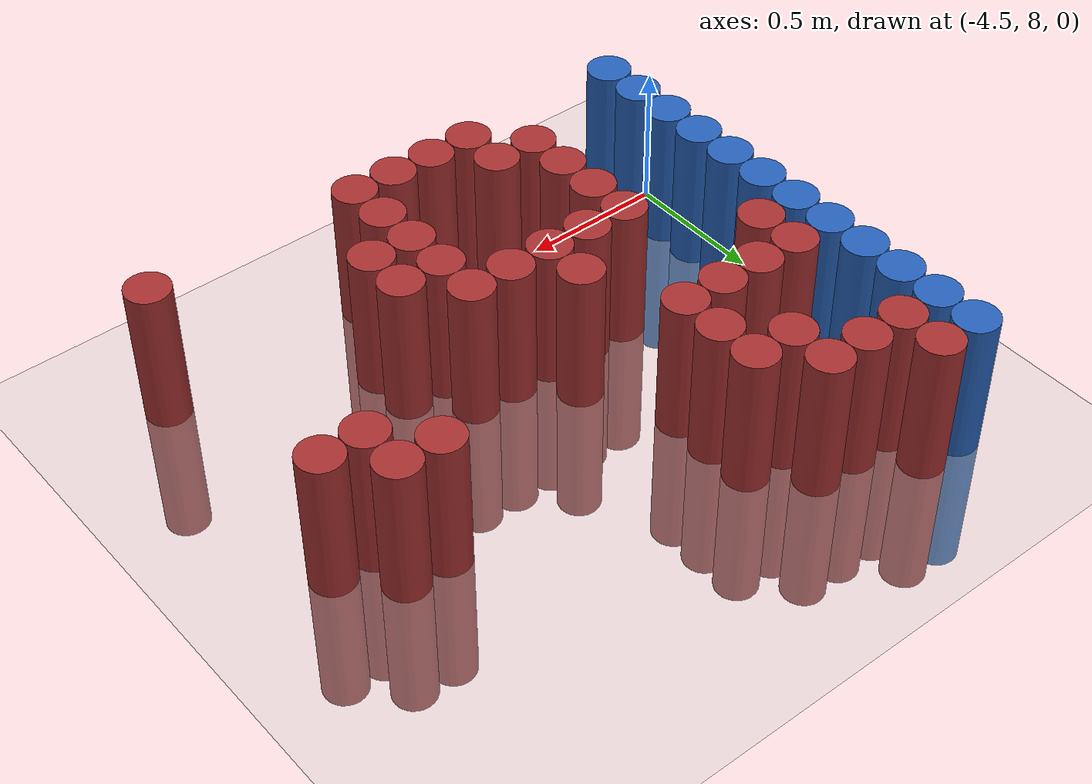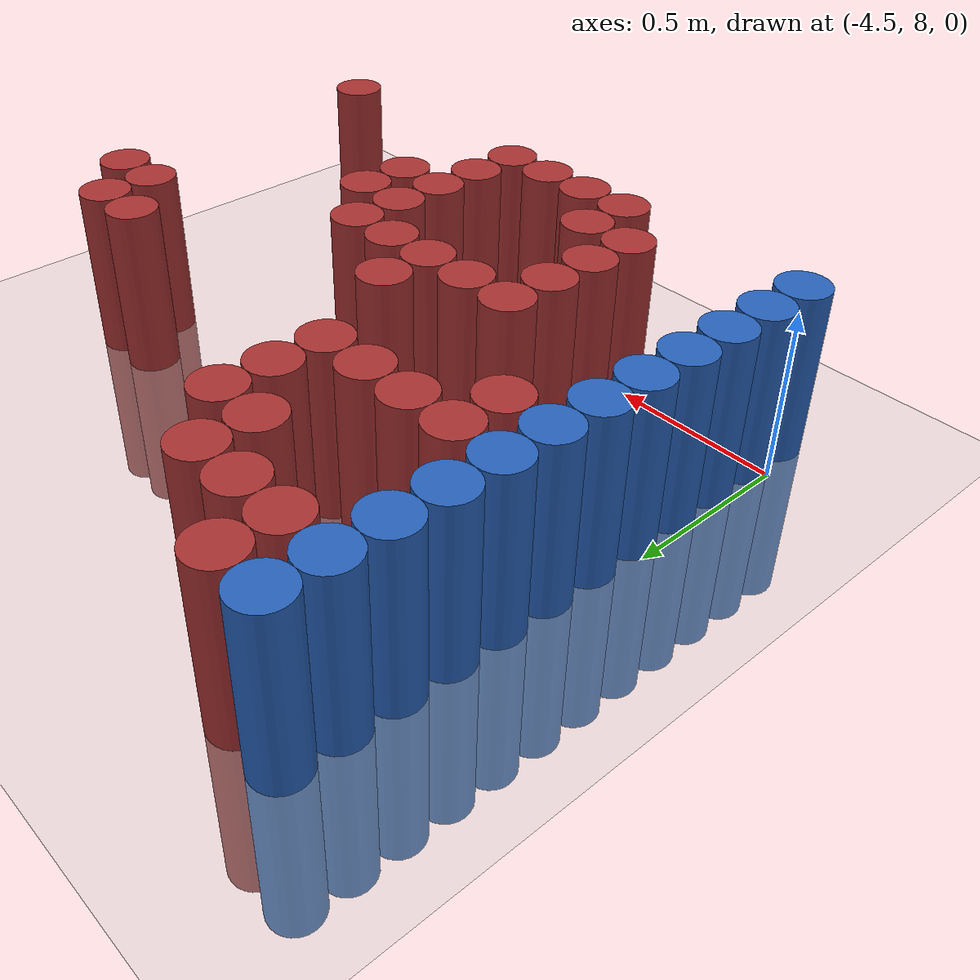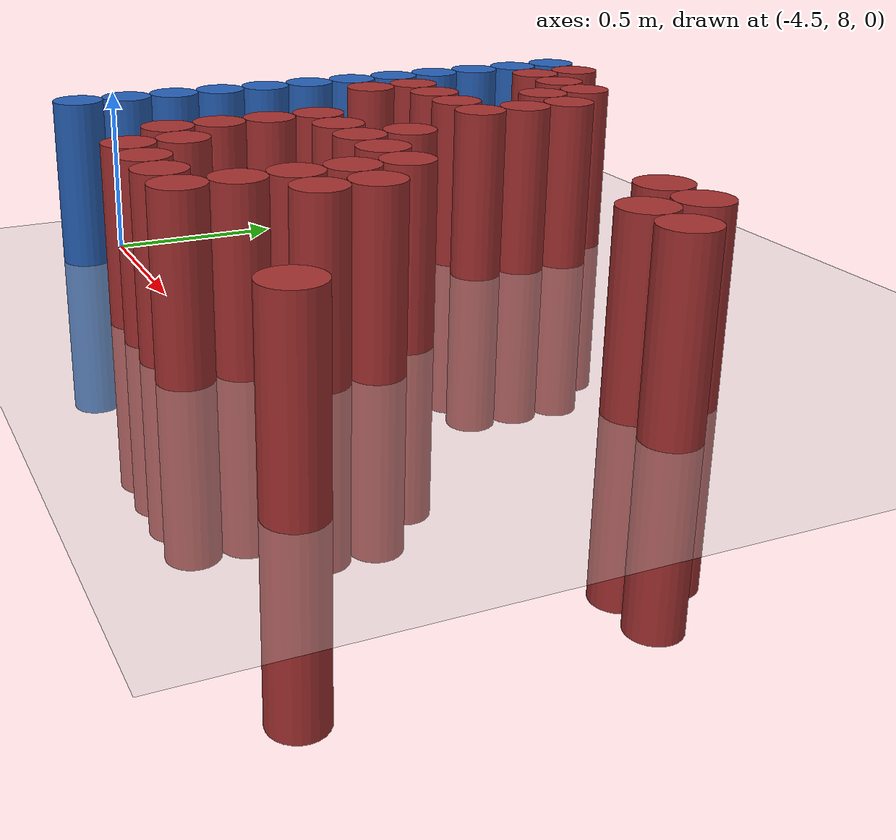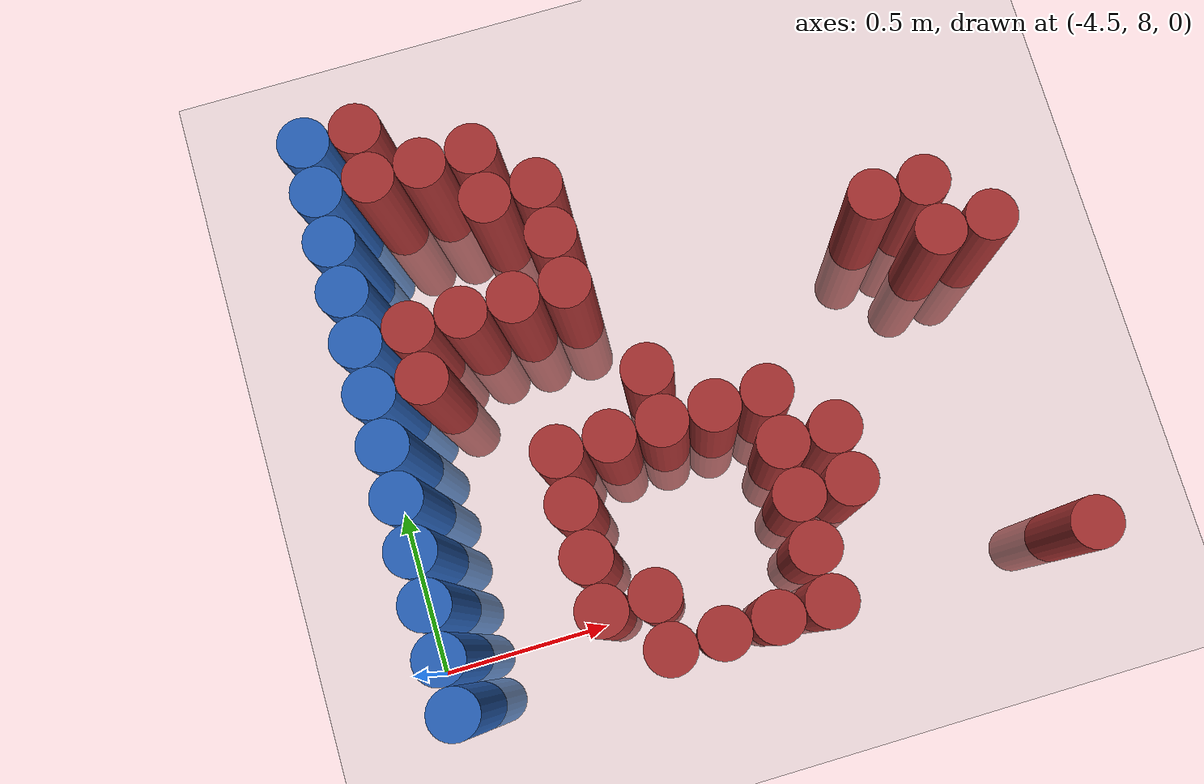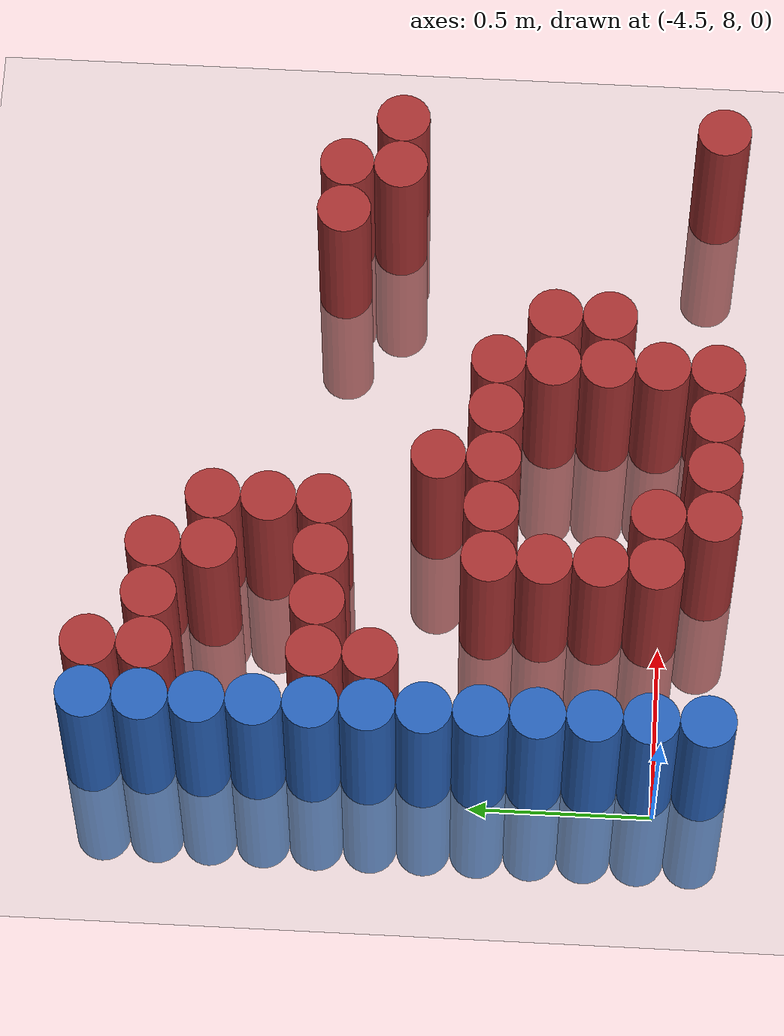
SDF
<sdf version="1.6">
 <world name="default">
  <model name="ground_plane">
   <static>1</static>
   <link name="link">
    <collision name="collision">
     <geometry><plane><normal>0 0 1</normal><size>100 100</size></plane></geometry>
     <surface><friction><ode><mu>100</mu><mu2>50</mu2></ode></friction></surface>
    </collision>
    <visual name="visual">
     <cast_shadows>0</cast_shadows>
     <geometry><plane><normal>0 0 1</normal><size>100 100</size></plane></geometry>
     <material>
      <script><uri>file://media/materials/scripts/gazebo.material</uri><name>Gazebo/Grey</name></script>
     </material>
    </visual>
   </link>
  </model>
  <model name="unit_cylinder_114">
   <static>1</static>
   <pose>-4.425000 7.875000 0.000000 0.000000 0.000000 0.000000</pose>
   <link name="link">
    <inertial>
     <mass>1</mass>
     <inertia><ixx>0.145833</ixx><ixy>0</ixy><ixz>0</ixz><iyy>0.145833</iyy><iyz>0</iyz><izz>0.125</izz></inertia>
    </inertial>
    <collision name="collision">
     <geometry><cylinder><radius>0.075000</radius><length>1</length></cylinder></geometry>
    </collision>
    <visual name="visual">
     <geometry><cylinder><radius>0.075000</radius><length>1</length></cylinder></geometry>
     <material>
      <ambient>0.152000 0.379000 0.720000 1</ambient>
      <diffuse>0.152000 0.379000 0.720000 1</diffuse>
     </material>
     <material>
      <script><name>Gazebo/Grey</name><uri>file://media/materials/scripts/gazebo.material</uri></script>
     </material>
    </visual>
   </link>
  </model>
  <model name="unit_cylinder_115">
   <static>1</static>
   <pose>-4.425000 8.025000 0.000000 0.000000 0.000000 0.000000</pose>
   <link name="link">
    <inertial>
     <mass>1</mass>
     <inertia><ixx>0.145833</ixx><ixy>0</ixy><ixz>0</ixz><iyy>0.145833</iyy><iyz>0</iyz><izz>0.125</izz></inertia>
    </inertial>
    <collision name="collision">
     <geometry><cylinder><radius>0.075000</radius><length>1</length></cylinder></geometry>
    </collision>
    <visual name="visual">
     <geometry><cylinder><radius>0.075000</radius><length>1</length></cylinder></geometry>
     <material>
      <ambient>0.152000 0.379000 0.720000 1</ambient>
      <diffuse>0.152000 0.379000 0.720000 1</diffuse>
     </material>
     <material>
      <script><name>Gazebo/Grey</name><uri>file://media/materials/scripts/gazebo.material</uri></script>
     </material>
    </visual>
   </link>
  </model>
  <model name="unit_cylinder_116">
   <static>1</static>
   <pose>-4.425000 8.175000 0.000000 0.000000 0.000000 0.000000</pose>
   <link name="link">
    <inertial>
     <mass>1</mass>
     <inertia><ixx>0.145833</ixx><ixy>0</ixy><ixz>0</ixz><iyy>0.145833</iyy><iyz>0</iyz><izz>0.125</izz></inertia>
    </inertial>
    <collision name="collision">
     <geometry><cylinder><radius>0.075000</radius><length>1</length></cylinder></geometry>
    </collision>
    <visual name="visual">
     <geometry><cylinder><radius>0.075000</radius><length>1</length></cylinder></geometry>
     <material>
      <ambient>0.152000 0.379000 0.720000 1</ambient>
      <diffuse>0.152000 0.379000 0.720000 1</diffuse>
     </material>
     <material>
      <script><name>Gazebo/Grey</name><uri>file://media/materials/scripts/gazebo.material</uri></script>
     </material>
    </visual>
   </link>
  </model>
  <model name="unit_cylinder_117">
   <static>1</static>
   <pose>-4.425000 8.325000 0.000000 0.000000 0.000000 0.000000</pose>
   <link name="link">
    <inertial>
     <mass>1</mass>
     <inertia><ixx>0.145833</ixx><ixy>0</ixy><ixz>0</ixz><iyy>0.145833</iyy><iyz>0</iyz><izz>0.125</izz></inertia>
    </inertial>
    <collision name="collision">
     <geometry><cylinder><radius>0.075000</radius><length>1</length></cylinder></geometry>
    </collision>
    <visual name="visual">
     <geometry><cylinder><radius>0.075000</radius><length>1</length></cylinder></geometry>
     <material>
      <ambient>0.152000 0.379000 0.720000 1</ambient>
      <diffuse>0.152000 0.379000 0.720000 1</diffuse>
     </material>
     <material>
      <script><name>Gazebo/Grey</name><uri>file://media/materials/scripts/gazebo.material</uri></script>
     </material>
    </visual>
   </link>
  </model>
  <model name="unit_cylinder_118">
   <static>1</static>
   <pose>-4.425000 8.475000 0.000000 0.000000 0.000000 0.000000</pose>
   <link name="link">
    <inertial>
     <mass>1</mass>
     <inertia><ixx>0.145833</ixx><ixy>0</ixy><ixz>0</ixz><iyy>0.145833</iyy><iyz>0</iyz><izz>0.125</izz></inertia>
    </inertial>
    <collision name="collision">
     <geometry><cylinder><radius>0.075000</radius><length>1</length></cylinder></geometry>
    </collision>
    <visual name="visual">
     <geometry><cylinder><radius>0.075000</radius><length>1</length></cylinder></geometry>
     <material>
      <ambient>0.152000 0.379000 0.720000 1</ambient>
      <diffuse>0.152000 0.379000 0.720000 1</diffuse>
     </material>
     <material>
      <script><name>Gazebo/Grey</name><uri>file://media/materials/scripts/gazebo.material</uri></script>
     </material>
    </visual>
   </link>
  </model>
  <model name="unit_cylinder_119">
   <static>1</static>
   <pose>-4.425000 8.625000 0.000000 0.000000 0.000000 0.000000</pose>
   <link name="link">
    <inertial>
     <mass>1</mass>
     <inertia><ixx>0.145833</ixx><ixy>0</ixy><ixz>0</ixz><iyy>0.145833</iyy><iyz>0</iyz><izz>0.125</izz></inertia>
    </inertial>
    <collision name="collision">
     <geometry><cylinder><radius>0.075000</radius><length>1</length></cylinder></geometry>
    </collision>
    <visual name="visual">
     <geometry><cylinder><radius>0.075000</radius><length>1</length></cylinder></geometry>
     <material>
      <ambient>0.152000 0.379000 0.720000 1</ambient>
      <diffuse>0.152000 0.379000 0.720000 1</diffuse>
     </material>
     <material>
      <script><name>Gazebo/Grey</name><uri>file://media/materials/scripts/gazebo.material</uri></script>
     </material>
    </visual>
   </link>
  </model>
  <model name="unit_cylinder_120">
   <static>1</static>
   <pose>-4.425000 8.775000 0.000000 0.000000 0.000000 0.000000</pose>
   <link name="link">
    <inertial>
     <mass>1</mass>
     <inertia><ixx>0.145833</ixx><ixy>0</ixy><ixz>0</ixz><iyy>0.145833</iyy><iyz>0</iyz><izz>0.125</izz></inertia>
    </inertial>
    <collision name="collision">
     <geometry><cylinder><radius>0.075000</radius><length>1</length></cylinder></geometry>
    </collision>
    <visual name="visual">
     <geometry><cylinder><radius>0.075000</radius><length>1</length></cylinder></geometry>
     <material>
      <ambient>0.152000 0.379000 0.720000 1</ambient>
      <diffuse>0.152000 0.379000 0.720000 1</diffuse>
     </material>
     <material>
      <script><name>Gazebo/Grey</name><uri>file://media/materials/scripts/gazebo.material</uri></script>
     </material>
    </visual>
   </link>
  </model>
  <model name="unit_cylinder_121">
   <static>1</static>
   <pose>-4.425000 8.925000 0.000000 0.000000 0.000000 0.000000</pose>
   <link name="link">
    <inertial>
     <mass>1</mass>
     <inertia><ixx>0.145833</ixx><ixy>0</ixy><ixz>0</ixz><iyy>0.145833</iyy><iyz>0</iyz><izz>0.125</izz></inertia>
    </inertial>
    <collision name="collision">
     <geometry><cylinder><radius>0.075000</radius><length>1</length></cylinder></geometry>
    </collision>
    <visual name="visual">
     <geometry><cylinder><radius>0.075000</radius><length>1</length></cylinder></geometry>
     <material>
      <ambient>0.152000 0.379000 0.720000 1</ambient>
      <diffuse>0.152000 0.379000 0.720000 1</diffuse>
     </material>
     <material>
      <script><name>Gazebo/Grey</name><uri>file://media/materials/scripts/gazebo.material</uri></script>
     </material>
    </visual>
   </link>
  </model>
  <model name="unit_cylinder_122">
   <static>1</static>
   <pose>-4.425000 9.075000 0.000000 0.000000 0.000000 0.000000</pose>
   <link name="link">
    <inertial>
     <mass>1</mass>
     <inertia><ixx>0.145833</ixx><ixy>0</ixy><ixz>0</ixz><iyy>0.145833</iyy><iyz>0</iyz><izz>0.125</izz></inertia>
    </inertial>
    <collision name="collision">
     <geometry><cylinder><radius>0.075000</radius><length>1</length></cylinder></geometry>
    </collision>
    <visual name="visual">
     <geometry><cylinder><radius>0.075000</radius><length>1</length></cylinder></geometry>
     <material>
      <ambient>0.152000 0.379000 0.720000 1</ambient>
      <diffuse>0.152000 0.379000 0.720000 1</diffuse>
     </material>
     <material>
      <script><name>Gazebo/Grey</name><uri>file://media/materials/scripts/gazebo.material</uri></script>
     </material>
    </visual>
   </link>
  </model>
  <model name="unit_cylinder_123">
   <static>1</static>
   <pose>-4.425000 9.225000 0.000000 0.000000 0.000000 0.000000</pose>
   <link name="link">
    <inertial>
     <mass>1</mass>
     <inertia><ixx>0.145833</ixx><ixy>0</ixy><ixz>0</ixz><iyy>0.145833</iyy><iyz>0</iyz><izz>0.125</izz></inertia>
    </inertial>
    <collision name="collision">
     <geometry><cylinder><radius>0.075000</radius><length>1</length></cylinder></geometry>
    </collision>
    <visual name="visual">
     <geometry><cylinder><radius>0.075000</radius><length>1</length></cylinder></geometry>
     <material>
      <ambient>0.152000 0.379000 0.720000 1</ambient>
      <diffuse>0.152000 0.379000 0.720000 1</diffuse>
     </material>
     <material>
      <script><name>Gazebo/Grey</name><uri>file://media/materials/scripts/gazebo.material</uri></script>
     </material>
    </visual>
   </link>
  </model>
  <model name="unit_cylinder_124">
   <static>1</static>
   <pose>-4.425000 9.375000 0.000000 0.000000 0.000000 0.000000</pose>
   <link name="link">
    <inertial>
     <mass>1</mass>
     <inertia><ixx>0.145833</ixx><ixy>0</ixy><ixz>0</ixz><iyy>0.145833</iyy><iyz>0</iyz><izz>0.125</izz></inertia>
    </inertial>
    <collision name="collision">
     <geometry><cylinder><radius>0.075000</radius><length>1</length></cylinder></geometry>
    </collision>
    <visual name="visual">
     <geometry><cylinder><radius>0.075000</radius><length>1</length></cylinder></geometry>
     <material>
      <ambient>0.152000 0.379000 0.720000 1</ambient>
      <diffuse>0.152000 0.379000 0.720000 1</diffuse>
     </material>
     <material>
      <script><name>Gazebo/Grey</name><uri>file://media/materials/scripts/gazebo.material</uri></script>
     </material>
    </visual>
   </link>
  </model>
  <model name="unit_cylinder_125">
   <static>1</static>
   <pose>-4.425000 9.525000 0.000000 0.000000 0.000000 0.000000</pose>
   <link name="link">
    <inertial>
     <mass>1</mass>
     <inertia><ixx>0.145833</ixx><ixy>0</ixy><ixz>0</ixz><iyy>0.145833</iyy><iyz>0</iyz><izz>0.125</izz></inertia>
    </inertial>
    <collision name="collision">
     <geometry><cylinder><radius>0.075000</radius><length>1</length></cylinder></geometry>
    </collision>
    <visual name="visual">
     <geometry><cylinder><radius>0.075000</radius><length>1</length></cylinder></geometry>
     <material>
      <ambient>0.152000 0.379000 0.720000 1</ambient>
      <diffuse>0.152000 0.379000 0.720000 1</diffuse>
     </material>
     <material>
      <script><name>Gazebo/Grey</name><uri>file://media/materials/scripts/gazebo.material</uri></script>
     </material>
    </visual>
   </link>
  </model>
  <model name="unit_cylinder_136">
   <static>1</static>
   <pose>-4.275000 8.775000 0.000000 0.000000 0.000000 0.000000</pose>
   <link name="link">
    <inertial>
     <mass>1</mass>
     <inertia><ixx>0.145833</ixx><ixy>0</ixy><ixz>0</ixz><iyy>0.145833</iyy><iyz>0</iyz><izz>0.125</izz></inertia>
    </inertial>
    <collision name="collision">
     <geometry><cylinder><radius>0.075000</radius><length>1</length></cylinder></geometry>
    </collision>
    <visual name="visual">
     <geometry><cylinder><radius>0.075000</radius><length>1</length></cylinder></geometry>
     <material>
      <ambient>0.648000 0.192000 0.192000 1</ambient>
      <diffuse>0.648000 0.192000 0.192000 1</diffuse>
     </material>
     <material>
      <script><name>Gazebo/Grey</name><uri>file://media/materials/scripts/gazebo.material</uri></script>
     </material>
    </visual>
   </link>
  </model>
  <model name="unit_cylinder_137">
   <static>1</static>
   <pose>-4.275000 8.925000 0.000000 0.000000 0.000000 0.000000</pose>
   <link name="link">
    <inertial>
     <mass>1</mass>
     <inertia><ixx>0.145833</ixx><ixy>0</ixy><ixz>0</ixz><iyy>0.145833</iyy><iyz>0</iyz><izz>0.125</izz></inertia>
    </inertial>
    <collision name="collision">
     <geometry><cylinder><radius>0.075000</radius><length>1</length></cylinder></geometry>
    </collision>
    <visual name="visual">
     <geometry><cylinder><radius>0.075000</radius><length>1</length></cylinder></geometry>
     <material>
      <ambient>0.648000 0.192000 0.192000 1</ambient>
      <diffuse>0.648000 0.192000 0.192000 1</diffuse>
     </material>
     <material>
      <script><name>Gazebo/Grey</name><uri>file://media/materials/scripts/gazebo.material</uri></script>
     </material>
    </visual>
   </link>
  </model>
  <model name="unit_cylinder_138">
   <static>1</static>
   <pose>-4.275000 9.375000 0.000000 0.000000 0.000000 0.000000</pose>
   <link name="link">
    <inertial>
     <mass>1</mass>
     <inertia><ixx>0.145833</ixx><ixy>0</ixy><ixz>0</ixz><iyy>0.145833</iyy><iyz>0</iyz><izz>0.125</izz></inertia>
    </inertial>
    <collision name="collision">
     <geometry><cylinder><radius>0.075000</radius><length>1</length></cylinder></geometry>
    </collision>
    <visual name="visual">
     <geometry><cylinder><radius>0.075000</radius><length>1</length></cylinder></geometry>
     <material>
      <ambient>0.648000 0.192000 0.192000 1</ambient>
      <diffuse>0.648000 0.192000 0.192000 1</diffuse>
     </material>
     <material>
      <script><name>Gazebo/Grey</name><uri>file://media/materials/scripts/gazebo.material</uri></script>
     </material>
    </visual>
   </link>
  </model>
  <model name="unit_cylinder_139">
   <static>1</static>
   <pose>-4.275000 9.525000 0.000000 0.000000 0.000000 0.000000</pose>
   <link name="link">
    <inertial>
     <mass>1</mass>
     <inertia><ixx>0.145833</ixx><ixy>0</ixy><ixz>0</ixz><iyy>0.145833</iyy><iyz>0</iyz><izz>0.125</izz></inertia>
    </inertial>
    <collision name="collision">
     <geometry><cylinder><radius>0.075000</radius><length>1</length></cylinder></geometry>
    </collision>
    <visual name="visual">
     <geometry><cylinder><radius>0.075000</radius><length>1</length></cylinder></geometry>
     <material>
      <ambient>0.648000 0.192000 0.192000 1</ambient>
      <diffuse>0.648000 0.192000 0.192000 1</diffuse>
     </material>
     <material>
      <script><name>Gazebo/Grey</name><uri>file://media/materials/scripts/gazebo.material</uri></script>
     </material>
    </visual>
   </link>
  </model>
  <model name="unit_cylinder_145">
   <static>1</static>
   <pose>-4.125000 8.925000 0.000000 0.000000 0.000000 0.000000</pose>
   <link name="link">
    <inertial>
     <mass>1</mass>
     <inertia><ixx>0.145833</ixx><ixy>0</ixy><ixz>0</ixz><iyy>0.145833</iyy><iyz>0</iyz><izz>0.125</izz></inertia>
    </inertial>
    <collision name="collision">
     <geometry><cylinder><radius>0.075000</radius><length>1</length></cylinder></geometry>
    </collision>
    <visual name="visual">
     <geometry><cylinder><radius>0.075000</radius><length>1</length></cylinder></geometry>
     <material>
      <ambient>0.648000 0.192000 0.192000 1</ambient>
      <diffuse>0.648000 0.192000 0.192000 1</diffuse>
     </material>
     <material>
      <script><name>Gazebo/Grey</name><uri>file://media/materials/scripts/gazebo.material</uri></script>
     </material>
    </visual>
   </link>
  </model>
  <model name="unit_cylinder_146">
   <static>1</static>
   <pose>-4.125000 9.375000 0.000000 0.000000 0.000000 0.000000</pose>
   <link name="link">
    <inertial>
     <mass>1</mass>
     <inertia><ixx>0.145833</ixx><ixy>0</ixy><ixz>0</ixz><iyy>0.145833</iyy><iyz>0</iyz><izz>0.125</izz></inertia>
    </inertial>
    <collision name="collision">
     <geometry><cylinder><radius>0.075000</radius><length>1</length></cylinder></geometry>
    </collision>
    <visual name="visual">
     <geometry><cylinder><radius>0.075000</radius><length>1</length></cylinder></geometry>
     <material>
      <ambient>0.648000 0.192000 0.192000 1</ambient>
      <diffuse>0.648000 0.192000 0.192000 1</diffuse>
     </material>
     <material>
      <script><name>Gazebo/Grey</name><uri>file://media/materials/scripts/gazebo.material</uri></script>
     </material>
    </visual>
   </link>
  </model>
  <model name="unit_cylinder_151">
   <static>1</static>
   <pose>-3.975000 8.025000 0.000000 0.000000 0.000000 0.000000</pose>
   <link name="link">
    <inertial>
     <mass>1</mass>
     <inertia><ixx>0.145833</ixx><ixy>0</ixy><ixz>0</ixz><iyy>0.145833</iyy><iyz>0</iyz><izz>0.125</izz></inertia>
    </inertial>
    <collision name="collision">
     <geometry><cylinder><radius>0.075000</radius><length>1</length></cylinder></geometry>
    </collision>
    <visual name="visual">
     <geometry><cylinder><radius>0.075000</radius><length>1</length></cylinder></geometry>
     <material>
      <ambient>0.648000 0.192000 0.192000 1</ambient>
      <diffuse>0.648000 0.192000 0.192000 1</diffuse>
     </material>
     <material>
      <script><name>Gazebo/Grey</name><uri>file://media/materials/scripts/gazebo.material</uri></script>
     </material>
    </visual>
   </link>
  </model>
  <model name="unit_cylinder_152">
   <static>1</static>
   <pose>-3.975000 8.175000 0.000000 0.000000 0.000000 0.000000</pose>
   <link name="link">
    <inertial>
     <mass>1</mass>
     <inertia><ixx>0.145833</ixx><ixy>0</ixy><ixz>0</ixz><iyy>0.145833</iyy><iyz>0</iyz><izz>0.125</izz></inertia>
    </inertial>
    <collision name="collision">
     <geometry><cylinder><radius>0.075000</radius><length>1</length></cylinder></geometry>
    </collision>
    <visual name="visual">
     <geometry><cylinder><radius>0.075000</radius><length>1</length></cylinder></geometry>
     <material>
      <ambient>0.648000 0.192000 0.192000 1</ambient>
      <diffuse>0.648000 0.192000 0.192000 1</diffuse>
     </material>
     <material>
      <script><name>Gazebo/Grey</name><uri>file://media/materials/scripts/gazebo.material</uri></script>
     </material>
    </visual>
   </link>
  </model>
  <model name="unit_cylinder_153">
   <static>1</static>
   <pose>-3.975000 8.325000 0.000000 0.000000 0.000000 0.000000</pose>
   <link name="link">
    <inertial>
     <mass>1</mass>
     <inertia><ixx>0.145833</ixx><ixy>0</ixy><ixz>0</ixz><iyy>0.145833</iyy><iyz>0</iyz><izz>0.125</izz></inertia>
    </inertial>
    <collision name="collision">
     <geometry><cylinder><radius>0.075000</radius><length>1</length></cylinder></geometry>
    </collision>
    <visual name="visual">
     <geometry><cylinder><radius>0.075000</radius><length>1</length></cylinder></geometry>
     <material>
      <ambient>0.648000 0.192000 0.192000 1</ambient>
      <diffuse>0.648000 0.192000 0.192000 1</diffuse>
     </material>
     <material>
      <script><name>Gazebo/Grey</name><uri>file://media/materials/scripts/gazebo.material</uri></script>
     </material>
    </visual>
   </link>
  </model>
  <model name="unit_cylinder_154">
   <static>1</static>
   <pose>-3.975000 8.475000 0.000000 0.000000 0.000000 0.000000</pose>
   <link name="link">
    <inertial>
     <mass>1</mass>
     <inertia><ixx>0.145833</ixx><ixy>0</ixy><ixz>0</ixz><iyy>0.145833</iyy><iyz>0</iyz><izz>0.125</izz></inertia>
    </inertial>
    <collision name="collision">
     <geometry><cylinder><radius>0.075000</radius><length>1</length></cylinder></geometry>
    </collision>
    <visual name="visual">
     <geometry><cylinder><radius>0.075000</radius><length>1</length></cylinder></geometry>
     <material>
      <ambient>0.648000 0.192000 0.192000 1</ambient>
      <diffuse>0.648000 0.192000 0.192000 1</diffuse>
     </material>
     <material>
      <script><name>Gazebo/Grey</name><uri>file://media/materials/scripts/gazebo.material</uri></script>
     </material>
    </visual>
   </link>
  </model>
  <model name="unit_cylinder_155">
   <static>1</static>
   <pose>-3.975000 8.925000 0.000000 0.000000 0.000000 0.000000</pose>
   <link name="link">
    <inertial>
     <mass>1</mass>
     <inertia><ixx>0.145833</ixx><ixy>0</ixy><ixz>0</ixz><iyy>0.145833</iyy><iyz>0</iyz><izz>0.125</izz></inertia>
    </inertial>
    <collision name="collision">
     <geometry><cylinder><radius>0.075000</radius><length>1</length></cylinder></geometry>
    </collision>
    <visual name="visual">
     <geometry><cylinder><radius>0.075000</radius><length>1</length></cylinder></geometry>
     <material>
      <ambient>0.648000 0.192000 0.192000 1</ambient>
      <diffuse>0.648000 0.192000 0.192000 1</diffuse>
     </material>
     <material>
      <script><name>Gazebo/Grey</name><uri>file://media/materials/scripts/gazebo.material</uri></script>
     </material>
    </visual>
   </link>
  </model>
  <model name="unit_cylinder_156">
   <static>1</static>
   <pose>-3.975000 9.225000 0.000000 0.000000 0.000000 0.000000</pose>
   <link name="link">
    <inertial>
     <mass>1</mass>
     <inertia><ixx>0.145833</ixx><ixy>0</ixy><ixz>0</ixz><iyy>0.145833</iyy><iyz>0</iyz><izz>0.125</izz></inertia>
    </inertial>
    <collision name="collision">
     <geometry><cylinder><radius>0.075000</radius><length>1</length></cylinder></geometry>
    </collision>
    <visual name="visual">
     <geometry><cylinder><radius>0.075000</radius><length>1</length></cylinder></geometry>
     <material>
      <ambient>0.648000 0.192000 0.192000 1</ambient>
      <diffuse>0.648000 0.192000 0.192000 1</diffuse>
     </material>
     <material>
      <script><name>Gazebo/Grey</name><uri>file://media/materials/scripts/gazebo.material</uri></script>
     </material>
    </visual>
   </link>
  </model>
  <model name="unit_cylinder_157">
   <static>1</static>
   <pose>-3.975000 9.375000 0.000000 0.000000 0.000000 0.000000</pose>
   <link name="link">
    <inertial>
     <mass>1</mass>
     <inertia><ixx>0.145833</ixx><ixy>0</ixy><ixz>0</ixz><iyy>0.145833</iyy><iyz>0</iyz><izz>0.125</izz></inertia>
    </inertial>
    <collision name="collision">
     <geometry><cylinder><radius>0.075000</radius><length>1</length></cylinder></geometry>
    </collision>
    <visual name="visual">
     <geometry><cylinder><radius>0.075000</radius><length>1</length></cylinder></geometry>
     <material>
      <ambient>0.648000 0.192000 0.192000 1</ambient>
      <diffuse>0.648000 0.192000 0.192000 1</diffuse>
     </material>
     <material>
      <script><name>Gazebo/Grey</name><uri>file://media/materials/scripts/gazebo.material</uri></script>
     </material>
    </visual>
   </link>
  </model>
  <model name="unit_cylinder_159">
   <static>1</static>
   <pose>-3.825000 7.875000 0.000000 0.000000 0.000000 0.000000</pose>
   <link name="link">
    <inertial>
     <mass>1</mass>
     <inertia><ixx>0.145833</ixx><ixy>0</ixy><ixz>0</ixz><iyy>0.145833</iyy><iyz>0</iyz><izz>0.125</izz></inertia>
    </inertial>
    <collision name="collision">
     <geometry><cylinder><radius>0.075000</radius><length>1</length></cylinder></geometry>
    </collision>
    <visual name="visual">
     <geometry><cylinder><radius>0.075000</radius><length>1</length></cylinder></geometry>
     <material>
      <ambient>0.648000 0.192000 0.192000 1</ambient>
      <diffuse>0.648000 0.192000 0.192000 1</diffuse>
     </material>
     <material>
      <script><name>Gazebo/Grey</name><uri>file://media/materials/scripts/gazebo.material</uri></script>
     </material>
    </visual>
   </link>
  </model>
  <model name="unit_cylinder_160">
   <static>1</static>
   <pose>-3.825000 8.025000 0.000000 0.000000 0.000000 0.000000</pose>
   <link name="link">
    <inertial>
     <mass>1</mass>
     <inertia><ixx>0.145833</ixx><ixy>0</ixy><ixz>0</ixz><iyy>0.145833</iyy><iyz>0</iyz><izz>0.125</izz></inertia>
    </inertial>
    <collision name="collision">
     <geometry><cylinder><radius>0.075000</radius><length>1</length></cylinder></geometry>
    </collision>
    <visual name="visual">
     <geometry><cylinder><radius>0.075000</radius><length>1</length></cylinder></geometry>
     <material>
      <ambient>0.648000 0.192000 0.192000 1</ambient>
      <diffuse>0.648000 0.192000 0.192000 1</diffuse>
     </material>
     <material>
      <script><name>Gazebo/Grey</name><uri>file://media/materials/scripts/gazebo.material</uri></script>
     </material>
    </visual>
   </link>
  </model>
  <model name="unit_cylinder_161">
   <static>1</static>
   <pose>-3.825000 8.475000 0.000000 0.000000 0.000000 0.000000</pose>
   <link name="link">
    <inertial>
     <mass>1</mass>
     <inertia><ixx>0.145833</ixx><ixy>0</ixy><ixz>0</ixz><iyy>0.145833</iyy><iyz>0</iyz><izz>0.125</izz></inertia>
    </inertial>
    <collision name="collision">
     <geometry><cylinder><radius>0.075000</radius><length>1</length></cylinder></geometry>
    </collision>
    <visual name="visual">
     <geometry><cylinder><radius>0.075000</radius><length>1</length></cylinder></geometry>
     <material>
      <ambient>0.648000 0.192000 0.192000 1</ambient>
      <diffuse>0.648000 0.192000 0.192000 1</diffuse>
     </material>
     <material>
      <script><name>Gazebo/Grey</name><uri>file://media/materials/scripts/gazebo.material</uri></script>
     </material>
    </visual>
   </link>
  </model>
  <model name="unit_cylinder_162">
   <static>1</static>
   <pose>-3.825000 8.925000 0.000000 0.000000 0.000000 0.000000</pose>
   <link name="link">
    <inertial>
     <mass>1</mass>
     <inertia><ixx>0.145833</ixx><ixy>0</ixy><ixz>0</ixz><iyy>0.145833</iyy><iyz>0</iyz><izz>0.125</izz></inertia>
    </inertial>
    <collision name="collision">
     <geometry><cylinder><radius>0.075000</radius><length>1</length></cylinder></geometry>
    </collision>
    <visual name="visual">
     <geometry><cylinder><radius>0.075000</radius><length>1</length></cylinder></geometry>
     <material>
      <ambient>0.648000 0.192000 0.192000 1</ambient>
      <diffuse>0.648000 0.192000 0.192000 1</diffuse>
     </material>
     <material>
      <script><name>Gazebo/Grey</name><uri>file://media/materials/scripts/gazebo.material</uri></script>
     </material>
    </visual>
   </link>
  </model>
  <model name="unit_cylinder_163">
   <static>1</static>
   <pose>-3.825000 9.075000 0.000000 0.000000 0.000000 0.000000</pose>
   <link name="link">
    <inertial>
     <mass>1</mass>
     <inertia><ixx>0.145833</ixx><ixy>0</ixy><ixz>0</ixz><iyy>0.145833</iyy><iyz>0</iyz><izz>0.125</izz></inertia>
    </inertial>
    <collision name="collision">
     <geometry><cylinder><radius>0.075000</radius><length>1</length></cylinder></geometry>
    </collision>
    <visual name="visual">
     <geometry><cylinder><radius>0.075000</radius><length>1</length></cylinder></geometry>
     <material>
      <ambient>0.648000 0.192000 0.192000 1</ambient>
      <diffuse>0.648000 0.192000 0.192000 1</diffuse>
     </material>
     <material>
      <script><name>Gazebo/Grey</name><uri>file://media/materials/scripts/gazebo.material</uri></script>
     </material>
    </visual>
   </link>
  </model>
  <model name="unit_cylinder_164">
   <static>1</static>
   <pose>-3.825000 9.225000 0.000000 0.000000 0.000000 0.000000</pose>
   <link name="link">
    <inertial>
     <mass>1</mass>
     <inertia><ixx>0.145833</ixx><ixy>0</ixy><ixz>0</ixz><iyy>0.145833</iyy><iyz>0</iyz><izz>0.125</izz></inertia>
    </inertial>
    <collision name="collision">
     <geometry><cylinder><radius>0.075000</radius><length>1</length></cylinder></geometry>
    </collision>
    <visual name="visual">
     <geometry><cylinder><radius>0.075000</radius><length>1</length></cylinder></geometry>
     <material>
      <ambient>0.648000 0.192000 0.192000 1</ambient>
      <diffuse>0.648000 0.192000 0.192000 1</diffuse>
     </material>
     <material>
      <script><name>Gazebo/Grey</name><uri>file://media/materials/scripts/gazebo.material</uri></script>
     </material>
    </visual>
   </link>
  </model>
  <model name="unit_cylinder_167">
   <static>1</static>
   <pose>-3.675000 7.875000 0.000000 0.000000 0.000000 0.000000</pose>
   <link name="link">
    <inertial>
     <mass>1</mass>
     <inertia><ixx>0.145833</ixx><ixy>0</ixy><ixz>0</ixz><iyy>0.145833</iyy><iyz>0</iyz><izz>0.125</izz></inertia>
    </inertial>
    <collision name="collision">
     <geometry><cylinder><radius>0.075000</radius><length>1</length></cylinder></geometry>
    </collision>
    <visual name="visual">
     <geometry><cylinder><radius>0.075000</radius><length>1</length></cylinder></geometry>
     <material>
      <ambient>0.648000 0.192000 0.192000 1</ambient>
      <diffuse>0.648000 0.192000 0.192000 1</diffuse>
     </material>
     <material>
      <script><name>Gazebo/Grey</name><uri>file://media/materials/scripts/gazebo.material</uri></script>
     </material>
    </visual>
   </link>
  </model>
  <model name="unit_cylinder_168">
   <static>1</static>
   <pose>-3.675000 8.475000 0.000000 0.000000 0.000000 0.000000</pose>
   <link name="link">
    <inertial>
     <mass>1</mass>
     <inertia><ixx>0.145833</ixx><ixy>0</ixy><ixz>0</ixz><iyy>0.145833</iyy><iyz>0</iyz><izz>0.125</izz></inertia>
    </inertial>
    <collision name="collision">
     <geometry><cylinder><radius>0.075000</radius><length>1</length></cylinder></geometry>
    </collision>
    <visual name="visual">
     <geometry><cylinder><radius>0.075000</radius><length>1</length></cylinder></geometry>
     <material>
      <ambient>0.648000 0.192000 0.192000 1</ambient>
      <diffuse>0.648000 0.192000 0.192000 1</diffuse>
     </material>
     <material>
      <script><name>Gazebo/Grey</name><uri>file://media/materials/scripts/gazebo.material</uri></script>
     </material>
    </visual>
   </link>
  </model>
  <model name="unit_cylinder_169">
   <static>1</static>
   <pose>-3.675000 8.625000 0.000000 0.000000 0.000000 0.000000</pose>
   <link name="link">
    <inertial>
     <mass>1</mass>
     <inertia><ixx>0.145833</ixx><ixy>0</ixy><ixz>0</ixz><iyy>0.145833</iyy><iyz>0</iyz><izz>0.125</izz></inertia>
    </inertial>
    <collision name="collision">
     <geometry><cylinder><radius>0.075000</radius><length>1</length></cylinder></geometry>
    </collision>
    <visual name="visual">
     <geometry><cylinder><radius>0.075000</radius><length>1</length></cylinder></geometry>
     <material>
      <ambient>0.648000 0.192000 0.192000 1</ambient>
      <diffuse>0.648000 0.192000 0.192000 1</diffuse>
     </material>
     <material>
      <script><name>Gazebo/Grey</name><uri>file://media/materials/scripts/gazebo.material</uri></script>
     </material>
    </visual>
   </link>
  </model>
  <model name="unit_cylinder_174">
   <static>1</static>
   <pose>-3.525000 7.875000 0.000000 0.000000 0.000000 0.000000</pose>
   <link name="link">
    <inertial>
     <mass>1</mass>
     <inertia><ixx>0.145833</ixx><ixy>0</ixy><ixz>0</ixz><iyy>0.145833</iyy><iyz>0</iyz><izz>0.125</izz></inertia>
    </inertial>
    <collision name="collision">
     <geometry><cylinder><radius>0.075000</radius><length>1</length></cylinder></geometry>
    </collision>
    <visual name="visual">
     <geometry><cylinder><radius>0.075000</radius><length>1</length></cylinder></geometry>
     <material>
      <ambient>0.648000 0.192000 0.192000 1</ambient>
      <diffuse>0.648000 0.192000 0.192000 1</diffuse>
     </material>
     <material>
      <script><name>Gazebo/Grey</name><uri>file://media/materials/scripts/gazebo.material</uri></script>
     </material>
    </visual>
   </link>
  </model>
  <model name="unit_cylinder_175">
   <static>1</static>
   <pose>-3.525000 8.475000 0.000000 0.000000 0.000000 0.000000</pose>
   <link name="link">
    <inertial>
     <mass>1</mass>
     <inertia><ixx>0.145833</ixx><ixy>0</ixy><ixz>0</ixz><iyy>0.145833</iyy><iyz>0</iyz><izz>0.125</izz></inertia>
    </inertial>
    <collision name="collision">
     <geometry><cylinder><radius>0.075000</radius><length>1</length></cylinder></geometry>
    </collision>
    <visual name="visual">
     <geometry><cylinder><radius>0.075000</radius><length>1</length></cylinder></geometry>
     <material>
      <ambient>0.648000 0.192000 0.192000 1</ambient>
      <diffuse>0.648000 0.192000 0.192000 1</diffuse>
     </material>
     <material>
      <script><name>Gazebo/Grey</name><uri>file://media/materials/scripts/gazebo.material</uri></script>
     </material>
    </visual>
   </link>
  </model>
  <model name="unit_cylinder_180">
   <static>1</static>
   <pose>-3.375000 7.875000 0.000000 0.000000 0.000000 0.000000</pose>
   <link name="link">
    <inertial>
     <mass>1</mass>
     <inertia><ixx>0.145833</ixx><ixy>0</ixy><ixz>0</ixz><iyy>0.145833</iyy><iyz>0</iyz><izz>0.125</izz></inertia>
    </inertial>
    <collision name="collision">
     <geometry><cylinder><radius>0.075000</radius><length>1</length></cylinder></geometry>
    </collision>
    <visual name="visual">
     <geometry><cylinder><radius>0.075000</radius><length>1</length></cylinder></geometry>
     <material>
      <ambient>0.648000 0.192000 0.192000 1</ambient>
      <diffuse>0.648000 0.192000 0.192000 1</diffuse>
     </material>
     <material>
      <script><name>Gazebo/Grey</name><uri>file://media/materials/scripts/gazebo.material</uri></script>
     </material>
    </visual>
   </link>
  </model>
  <model name="unit_cylinder_181">
   <static>1</static>
   <pose>-3.375000 8.025000 0.000000 0.000000 0.000000 0.000000</pose>
   <link name="link">
    <inertial>
     <mass>1</mass>
     <inertia><ixx>0.145833</ixx><ixy>0</ixy><ixz>0</ixz><iyy>0.145833</iyy><iyz>0</iyz><izz>0.125</izz></inertia>
    </inertial>
    <collision name="collision">
     <geometry><cylinder><radius>0.075000</radius><length>1</length></cylinder></geometry>
    </collision>
    <visual name="visual">
     <geometry><cylinder><radius>0.075000</radius><length>1</length></cylinder></geometry>
     <material>
      <ambient>0.648000 0.192000 0.192000 1</ambient>
      <diffuse>0.648000 0.192000 0.192000 1</diffuse>
     </material>
     <material>
      <script><name>Gazebo/Grey</name><uri>file://media/materials/scripts/gazebo.material</uri></script>
     </material>
    </visual>
   </link>
  </model>
  <model name="unit_cylinder_182">
   <static>1</static>
   <pose>-3.375000 8.175000 0.000000 0.000000 0.000000 0.000000</pose>
   <link name="link">
    <inertial>
     <mass>1</mass>
     <inertia><ixx>0.145833</ixx><ixy>0</ixy><ixz>0</ixz><iyy>0.145833</iyy><iyz>0</iyz><izz>0.125</izz></inertia>
    </inertial>
    <collision name="collision">
     <geometry><cylinder><radius>0.075000</radius><length>1</length></cylinder></geometry>
    </collision>
    <visual name="visual">
     <geometry><cylinder><radius>0.075000</radius><length>1</length></cylinder></geometry>
     <material>
      <ambient>0.648000 0.192000 0.192000 1</ambient>
      <diffuse>0.648000 0.192000 0.192000 1</diffuse>
     </material>
     <material>
      <script><name>Gazebo/Grey</name><uri>file://media/materials/scripts/gazebo.material</uri></script>
     </material>
    </visual>
   </link>
  </model>
  <model name="unit_cylinder_183">
   <static>1</static>
   <pose>-3.375000 8.325000 0.000000 0.000000 0.000000 0.000000</pose>
   <link name="link">
    <inertial>
     <mass>1</mass>
     <inertia><ixx>0.145833</ixx><ixy>0</ixy><ixz>0</ixz><iyy>0.145833</iyy><iyz>0</iyz><izz>0.125</izz></inertia>
    </inertial>
    <collision name="collision">
     <geometry><cylinder><radius>0.075000</radius><length>1</length></cylinder></geometry>
    </collision>
    <visual name="visual">
     <geometry><cylinder><radius>0.075000</radius><length>1</length></cylinder></geometry>
     <material>
      <ambient>0.648000 0.192000 0.192000 1</ambient>
      <diffuse>0.648000 0.192000 0.192000 1</diffuse>
     </material>
     <material>
      <script><name>Gazebo/Grey</name><uri>file://media/materials/scripts/gazebo.material</uri></script>
     </material>
    </visual>
   </link>
  </model>
  <model name="unit_cylinder_184">
   <static>1</static>
   <pose>-3.375000 8.475000 0.000000 0.000000 0.000000 0.000000</pose>
   <link name="link">
    <inertial>
     <mass>1</mass>
     <inertia><ixx>0.145833</ixx><ixy>0</ixy><ixz>0</ixz><iyy>0.145833</iyy><iyz>0</iyz><izz>0.125</izz></inertia>
    </inertial>
    <collision name="collision">
     <geometry><cylinder><radius>0.075000</radius><length>1</length></cylinder></geometry>
    </collision>
    <visual name="visual">
     <geometry><cylinder><radius>0.075000</radius><length>1</length></cylinder></geometry>
     <material>
      <ambient>0.648000 0.192000 0.192000 1</ambient>
      <diffuse>0.648000 0.192000 0.192000 1</diffuse>
     </material>
     <material>
      <script><name>Gazebo/Grey</name><uri>file://media/materials/scripts/gazebo.material</uri></script>
     </material>
    </visual>
   </link>
  </model>
  <model name="unit_cylinder_190">
   <static>1</static>
   <pose>-3.225000 8.175000 0.000000 0.000000 0.000000 0.000000</pose>
   <link name="link">
    <inertial>
     <mass>1</mass>
     <inertia><ixx>0.145833</ixx><ixy>0</ixy><ixz>0</ixz><iyy>0.145833</iyy><iyz>0</iyz><izz>0.125</izz></inertia>
    </inertial>
    <collision name="collision">
     <geometry><cylinder><radius>0.075000</radius><length>1</length></cylinder></geometry>
    </collision>
    <visual name="visual">
     <geometry><cylinder><radius>0.075000</radius><length>1</length></cylinder></geometry>
     <material>
      <ambient>0.648000 0.192000 0.192000 1</ambient>
      <diffuse>0.648000 0.192000 0.192000 1</diffuse>
     </material>
     <material>
      <script><name>Gazebo/Grey</name><uri>file://media/materials/scripts/gazebo.material</uri></script>
     </material>
    </visual>
   </link>
  </model>
  <model name="unit_cylinder_191">
   <static>1</static>
   <pose>-3.225000 8.325000 0.000000 0.000000 0.000000 0.000000</pose>
   <link name="link">
    <inertial>
     <mass>1</mass>
     <inertia><ixx>0.145833</ixx><ixy>0</ixy><ixz>0</ixz><iyy>0.145833</iyy><iyz>0</iyz><izz>0.125</izz></inertia>
    </inertial>
    <collision name="collision">
     <geometry><cylinder><radius>0.075000</radius><length>1</length></cylinder></geometry>
    </collision>
    <visual name="visual">
     <geometry><cylinder><radius>0.075000</radius><length>1</length></cylinder></geometry>
     <material>
      <ambient>0.648000 0.192000 0.192000 1</ambient>
      <diffuse>0.648000 0.192000 0.192000 1</diffuse>
     </material>
     <material>
      <script><name>Gazebo/Grey</name><uri>file://media/materials/scripts/gazebo.material</uri></script>
     </material>
    </visual>
   </link>
  </model>
  <model name="unit_cylinder_207">
   <static>1</static>
   <pose>-2.925000 8.925000 0.000000 0.000000 0.000000 0.000000</pose>
   <link name="link">
    <inertial>
     <mass>1</mass>
     <inertia><ixx>0.145833</ixx><ixy>0</ixy><ixz>0</ixz><iyy>0.145833</iyy><iyz>0</iyz><izz>0.125</izz></inertia>
    </inertial>
    <collision name="collision">
     <geometry><cylinder><radius>0.075000</radius><length>1</length></cylinder></geometry>
    </collision>
    <visual name="visual">
     <geometry><cylinder><radius>0.075000</radius><length>1</length></cylinder></geometry>
     <material>
      <ambient>0.648000 0.192000 0.192000 1</ambient>
      <diffuse>0.648000 0.192000 0.192000 1</diffuse>
     </material>
     <material>
      <script><name>Gazebo/Grey</name><uri>file://media/materials/scripts/gazebo.material</uri></script>
     </material>
    </visual>
   </link>
  </model>
  <model name="unit_cylinder_215">
   <static>1</static>
   <pose>-2.775000 8.775000 0.000000 0.000000 0.000000 0.000000</pose>
   <link name="link">
    <inertial>
     <mass>1</mass>
     <inertia><ixx>0.145833</ixx><ixy>0</ixy><ixz>0</ixz><iyy>0.145833</iyy><iyz>0</iyz><izz>0.125</izz></inertia>
    </inertial>
    <collision name="collision">
     <geometry><cylinder><radius>0.075000</radius><length>1</length></cylinder></geometry>
    </collision>
    <visual name="visual">
     <geometry><cylinder><radius>0.075000</radius><length>1</length></cylinder></geometry>
     <material>
      <ambient>0.648000 0.192000 0.192000 1</ambient>
      <diffuse>0.648000 0.192000 0.192000 1</diffuse>
     </material>
     <material>
      <script><name>Gazebo/Grey</name><uri>file://media/materials/scripts/gazebo.material</uri></script>
     </material>
    </visual>
   </link>
  </model>
  <model name="unit_cylinder_216">
   <static>1</static>
   <pose>-2.775000 8.925000 0.000000 0.000000 0.000000 0.000000</pose>
   <link name="link">
    <inertial>
     <mass>1</mass>
     <inertia><ixx>0.145833</ixx><ixy>0</ixy><ixz>0</ixz><iyy>0.145833</iyy><iyz>0</iyz><izz>0.125</izz></inertia>
    </inertial>
    <collision name="collision">
     <geometry><cylinder><radius>0.075000</radius><length>1</length></cylinder></geometry>
    </collision>
    <visual name="visual">
     <geometry><cylinder><radius>0.075000</radius><length>1</length></cylinder></geometry>
     <material>
      <ambient>0.648000 0.192000 0.192000 1</ambient>
      <diffuse>0.648000 0.192000 0.192000 1</diffuse>
     </material>
     <material>
      <script><name>Gazebo/Grey</name><uri>file://media/materials/scripts/gazebo.material</uri></script>
     </material>
    </visual>
   </link>
  </model>
  <model name="unit_cylinder_223">
   <static>1</static>
   <pose>-2.625000 7.875000 0.000000 0.000000 0.000000 0.000000</pose>
   <link name="link">
    <inertial>
     <mass>1</mass>
     <inertia><ixx>0.145833</ixx><ixy>0</ixy><ixz>0</ixz><iyy>0.145833</iyy><iyz>0</iyz><izz>0.125</izz></inertia>
    </inertial>
    <collision name="collision">
     <geometry><cylinder><radius>0.075000</radius><length>1</length></cylinder></geometry>
    </collision>
    <visual name="visual">
     <geometry><cylinder><radius>0.075000</radius><length>1</length></cylinder></geometry>
     <material>
      <ambient>0.648000 0.192000 0.192000 1</ambient>
      <diffuse>0.648000 0.192000 0.192000 1</diffuse>
     </material>
     <material>
      <script><name>Gazebo/Grey</name><uri>file://media/materials/scripts/gazebo.material</uri></script>
     </material>
    </visual>
   </link>
  </model>
  <model name="unit_cylinder_224">
   <static>1</static>
   <pose>-2.625000 8.775000 0.000000 0.000000 0.000000 0.000000</pose>
   <link name="link">
    <inertial>
     <mass>1</mass>
     <inertia><ixx>0.145833</ixx><ixy>0</ixy><ixz>0</ixz><iyy>0.145833</iyy><iyz>0</iyz><izz>0.125</izz></inertia>
    </inertial>
    <collision name="collision">
     <geometry><cylinder><radius>0.075000</radius><length>1</length></cylinder></geometry>
    </collision>
    <visual name="visual">
     <geometry><cylinder><radius>0.075000</radius><length>1</length></cylinder></geometry>
     <material>
      <ambient>0.648000 0.192000 0.192000 1</ambient>
      <diffuse>0.648000 0.192000 0.192000 1</diffuse>
     </material>
     <material>
      <script><name>Gazebo/Grey</name><uri>file://media/materials/scripts/gazebo.material</uri></script>
     </material>
    </visual>
   </link>
  </model>
 </world>
</sdf>
